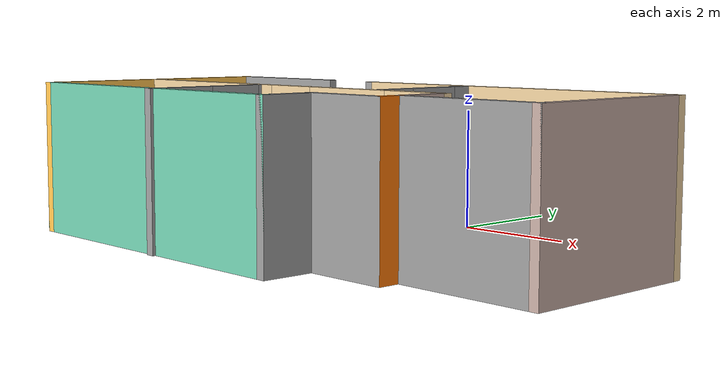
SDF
<?xml version='1.0'?>
<sdf version='1.6'>
  <model name='building2'>
    <pose frame=''>0.3 -3.445 0 0 -0 0</pose>
    <link name='Door_3'>
      <collision name='Door_3_Collision'>
        <geometry>
          <box>
            <size>0.9 0.17 2</size>
          </box>
        </geometry>
        <pose frame=''>0 0 1 0 -0 0</pose>
      </collision>
      <visual name='Door_3_Visual'>
        <pose frame=''>0 0 1 0 -0 0</pose>
        <geometry>
          <box>
            <size>0.9 0.17 2</size>
          </box>
        </geometry>
        <material>
          <script>
            <uri>file://media/materials/scripts/gazebo.material</uri>
            <name>Gazebo/Grey</name>
          </script>
        </material>
      </visual>
      <pose frame=''>-4.01 -0.065 0 0 -0 0</pose>
    </link>
    <link name='Wall_0'>
      <collision name='Wall_0_Collision'>
        <geometry>
          <box>
            <size>2.5 0.15 2.5</size>
          </box>
        </geometry>
        <pose frame=''>0 0 1.25 0 -0 0</pose>
      </collision>
      <visual name='Wall_0_Visual'>
        <pose frame=''>0 0 1.25 0 -0 0</pose>
        <geometry>
          <box>
            <size>2.5 0.15 2.5</size>
          </box>
        </geometry>
        <material>
          <script>
            <uri>file://media/materials/scripts/gazebo.material</uri>
            <name>Gazebo/Grey</name>
          </script>
          <ambient>1 1 1 1</ambient>
        </material>
        <meta>
          <layer>0</layer>
        </meta>
      </visual>
      <pose frame=''>-3.475 2.075 0 0 -0 3.14159</pose>
    </link>
    <link name='Wall_1'>
      <collision name='Wall_1_Collision'>
        <geometry>
          <box>
            <size>4.25 0.15 2.5</size>
          </box>
        </geometry>
        <pose frame=''>0 0 1.25 0 -0 0</pose>
      </collision>
      <visual name='Wall_1_Visual'>
        <pose frame=''>0 0 1.25 0 -0 0</pose>
        <geometry>
          <box>
            <size>4.25 0.15 2.5</size>
          </box>
        </geometry>
        <material>
          <script>
            <uri>file://media/materials/scripts/gazebo.material</uri>
            <name>Gazebo/Grey</name>
          </script>
          <ambient>1 0.764706 0.305882 1</ambient>
        </material>
        <meta>
          <layer>0</layer>
        </meta>
      </visual>
      <pose frame=''>-4.65 0.025 0 0 0 -1.5708</pose>
    </link>
    <link name='Wall_12'>
      <collision name='Wall_12_Collision'>
        <geometry>
          <box>
            <size>1 0.15 2.5</size>
          </box>
        </geometry>
        <pose frame=''>0 0 1.25 0 -0 0</pose>
      </collision>
      <visual name='Wall_12_Visual'>
        <pose frame=''>0 0 1.25 0 -0 0</pose>
        <geometry>
          <box>
            <size>1 0.15 2.5</size>
          </box>
        </geometry>
        <material>
          <script>
            <uri>file://media/materials/scripts/gazebo.material</uri>
            <name>Gazebo/Grey</name>
          </script>
          <ambient>0.760784 0.662745 0.627451 1</ambient>
        </material>
        <meta>
          <layer>0</layer>
        </meta>
      </visual>
      <pose frame=''>2.3 -0.4 0 0 -0 1.5708</pose>
    </link>
    <link name='Wall_13'>
      <pose frame=''>-1.125 0.025 0 0 -0 3.14159</pose>
      <visual name='Wall_13_Visual_0'>
        <pose frame=''>-3.3725 0 1.25 0 -0 0</pose>
        <geometry>
          <box>
            <size>0.255 0.15 2.5</size>
          </box>
        </geometry>
        <material>
          <script>
            <uri>file://media/materials/scripts/gazebo.material</uri>
            <name>Gazebo/Grey</name>
          </script>
          <ambient>0.921569 0.807843 0.615686 1</ambient>
        </material>
        <meta>
          <layer>0</layer>
        </meta>
      </visual>
      <collision name='Wall_13_Collision_0'>
        <geometry>
          <box>
            <size>0.255 0.15 2.5</size>
          </box>
        </geometry>
        <pose frame=''>-3.3725 0 1.25 0 -0 0</pose>
      </collision>
      <visual name='Wall_13_Visual_1'>
        <pose frame=''>-1.535 0 1.25 0 -0 0</pose>
        <geometry>
          <box>
            <size>1.62 0.15 2.5</size>
          </box>
        </geometry>
        <material>
          <script>
            <uri>file://media/materials/scripts/gazebo.material</uri>
            <name>Gazebo/Grey</name>
          </script>
          <ambient>0.921569 0.807843 0.615686 1</ambient>
        </material>
        <meta>
          <layer>0</layer>
        </meta>
      </visual>
      <collision name='Wall_13_Collision_1'>
        <geometry>
          <box>
            <size>1.62 0.15 2.5</size>
          </box>
        </geometry>
        <pose frame=''>-1.535 0 1.25 0 -0 0</pose>
      </collision>
      <visual name='Wall_13_Visual_2'>
        <pose frame=''>1.8375 0 1.25 0 -0 0</pose>
        <geometry>
          <box>
            <size>3.325 0.15 2.5</size>
          </box>
        </geometry>
        <material>
          <script>
            <uri>file://media/materials/scripts/gazebo.material</uri>
            <name>Gazebo/Grey</name>
          </script>
          <ambient>0.921569 0.807843 0.615686 1</ambient>
        </material>
        <meta>
          <layer>0</layer>
        </meta>
      </visual>
      <collision name='Wall_13_Collision_2'>
        <geometry>
          <box>
            <size>3.325 0.15 2.5</size>
          </box>
        </geometry>
        <pose frame=''>1.8375 0 1.25 0 -0 0</pose>
      </collision>
      <visual name='Wall_13_Visual_3'>
        <pose frame=''>-2.795 0 2.25 0 -0 0</pose>
        <geometry>
          <box>
            <size>0.9 0.15 0.5</size>
          </box>
        </geometry>
        <material>
          <script>
            <uri>file://media/materials/scripts/gazebo.material</uri>
            <name>Gazebo/Grey</name>
          </script>
          <ambient>0.921569 0.807843 0.615686 1</ambient>
        </material>
        <meta>
          <layer>0</layer>
        </meta>
      </visual>
      <collision name='Wall_13_Collision_3'>
        <geometry>
          <box>
            <size>0.9 0.15 0.5</size>
          </box>
        </geometry>
        <pose frame=''>-2.795 0 2.25 0 -0 0</pose>
      </collision>
      <visual name='Wall_13_Visual_4'>
        <pose frame=''>-0.275 0 2.25 0 -0 0</pose>
        <geometry>
          <box>
            <size>0.9 0.15 0.5</size>
          </box>
        </geometry>
        <material>
          <script>
            <uri>file://media/materials/scripts/gazebo.material</uri>
            <name>Gazebo/Grey</name>
          </script>
          <ambient>0.921569 0.807843 0.615686 1</ambient>
        </material>
        <meta>
          <layer>0</layer>
        </meta>
      </visual>
      <collision name='Wall_13_Collision_4'>
        <geometry>
          <box>
            <size>0.9 0.15 0.5</size>
          </box>
        </geometry>
        <pose frame=''>-0.275 0 2.25 0 -0 0</pose>
      </collision>
    </link>
    <link name='Wall_15'>
      <pose frame=''>-1.63 -1.025 0 0 0 -1.5708</pose>
      <visual name='Wall_15_Visual_0'>
        <pose frame=''>-1.0175 0 1.25 0 -0 0</pose>
        <geometry>
          <box>
            <size>0.215 0.15 2.5</size>
          </box>
        </geometry>
        <material>
          <script>
            <uri>file://media/materials/scripts/gazebo.material</uri>
            <name>Gazebo/Grey</name>
          </script>
          <ambient>1 1 1 1</ambient>
        </material>
        <meta>
          <layer>0</layer>
        </meta>
      </visual>
      <collision name='Wall_15_Collision_0'>
        <geometry>
          <box>
            <size>0.215 0.15 2.5</size>
          </box>
        </geometry>
        <pose frame=''>-1.0175 0 1.25 0 -0 0</pose>
      </collision>
      <visual name='Wall_15_Visual_1'>
        <pose frame=''>0.5575 0 1.25 0 -0 0</pose>
        <geometry>
          <box>
            <size>1.135 0.15 2.5</size>
          </box>
        </geometry>
        <material>
          <script>
            <uri>file://media/materials/scripts/gazebo.material</uri>
            <name>Gazebo/Grey</name>
          </script>
          <ambient>1 1 1 1</ambient>
        </material>
        <meta>
          <layer>0</layer>
        </meta>
      </visual>
      <collision name='Wall_15_Collision_1'>
        <geometry>
          <box>
            <size>1.135 0.15 2.5</size>
          </box>
        </geometry>
        <pose frame=''>0.5575 0 1.25 0 -0 0</pose>
      </collision>
      <visual name='Wall_15_Visual_2'>
        <pose frame=''>-0.46 0 2.25 0 -0 0</pose>
        <geometry>
          <box>
            <size>0.9 0.15 0.5</size>
          </box>
        </geometry>
        <material>
          <script>
            <uri>file://media/materials/scripts/gazebo.material</uri>
            <name>Gazebo/Grey</name>
          </script>
          <ambient>1 1 1 1</ambient>
        </material>
        <meta>
          <layer>0</layer>
        </meta>
      </visual>
      <collision name='Wall_15_Collision_2'>
        <geometry>
          <box>
            <size>0.9 0.15 0.5</size>
          </box>
        </geometry>
        <pose frame=''>-0.46 0 2.25 0 -0 0</pose>
      </collision>
    </link>
    <link name='Wall_17'>
      <pose frame=''>0.95 1.08 0 0 0 -1.5708</pose>
      <visual name='Wall_17_Visual_0'>
        <pose frame=''>-0.7775 0 1.25 0 -0 0</pose>
        <geometry>
          <box>
            <size>0.445 0.15 2.5</size>
          </box>
        </geometry>
        <material>
          <script>
            <uri>file://media/materials/scripts/gazebo.material</uri>
            <name>Gazebo/Grey</name>
          </script>
          <ambient>1 1 1 1</ambient>
        </material>
        <meta>
          <layer>0</layer>
        </meta>
      </visual>
      <collision name='Wall_17_Collision_0'>
        <geometry>
          <box>
            <size>0.445 0.15 2.5</size>
          </box>
        </geometry>
        <pose frame=''>-0.7775 0 1.25 0 -0 0</pose>
      </collision>
      <visual name='Wall_17_Visual_1'>
        <pose frame=''>0.6725 0 1.25 0 -0 0</pose>
        <geometry>
          <box>
            <size>0.655 0.15 2.5</size>
          </box>
        </geometry>
        <material>
          <script>
            <uri>file://media/materials/scripts/gazebo.material</uri>
            <name>Gazebo/Grey</name>
          </script>
          <ambient>1 1 1 1</ambient>
        </material>
        <meta>
          <layer>0</layer>
        </meta>
      </visual>
      <collision name='Wall_17_Collision_1'>
        <geometry>
          <box>
            <size>0.655 0.15 2.5</size>
          </box>
        </geometry>
        <pose frame=''>0.6725 0 1.25 0 -0 0</pose>
      </collision>
      <visual name='Wall_17_Visual_2'>
        <pose frame=''>-0.105 0 2.25 0 -0 0</pose>
        <geometry>
          <box>
            <size>0.9 0.15 0.5</size>
          </box>
        </geometry>
        <material>
          <script>
            <uri>file://media/materials/scripts/gazebo.material</uri>
            <name>Gazebo/Grey</name>
          </script>
          <ambient>1 1 1 1</ambient>
        </material>
        <meta>
          <layer>0</layer>
        </meta>
      </visual>
      <collision name='Wall_17_Collision_2'>
        <geometry>
          <box>
            <size>0.9 0.15 0.5</size>
          </box>
        </geometry>
        <pose frame=''>-0.105 0 2.25 0 -0 0</pose>
      </collision>
    </link>
    <link name='Wall_2'>
      <collision name='Wall_2_Collision'>
        <geometry>
          <box>
            <size>5.75 0.15 2.5</size>
          </box>
        </geometry>
        <pose frame=''>0 0 1.25 0 -0 0</pose>
      </collision>
      <visual name='Wall_2_Visual'>
        <pose frame=''>0 0 1.25 0 -0 0</pose>
        <geometry>
          <box>
            <size>5.75 0.15 2.5</size>
          </box>
        </geometry>
        <material>
          <script>
            <uri>file://media/materials/scripts/gazebo.material</uri>
            <name>Gazebo/Grey</name>
          </script>
          <ambient>0.435294 0.796078 0.67451 1</ambient>
        </material>
        <meta>
          <layer>0</layer>
        </meta>
      </visual>
      <pose frame=''>-1.85 -2.025 0 0 -0 0</pose>
    </link>
    <link name='Wall_3'>
      <collision name='Wall_3_Collision'>
        <geometry>
          <box>
            <size>1 0.15 2.5</size>
          </box>
        </geometry>
        <pose frame=''>0 0 1.25 0 -0 0</pose>
      </collision>
      <visual name='Wall_3_Visual'>
        <pose frame=''>0 0 1.25 0 -0 0</pose>
        <geometry>
          <box>
            <size>1 0.15 2.5</size>
          </box>
        </geometry>
        <material>
          <script>
            <uri>file://media/materials/scripts/gazebo.material</uri>
            <name>Gazebo/Grey</name>
          </script>
          <ambient>1 1 1 1</ambient>
        </material>
        <meta>
          <layer>0</layer>
        </meta>
      </visual>
      <pose frame=''>0.95 -1.6 0 0 -0 1.5708</pose>
    </link>
    <link name='Wall_4'>
      <collision name='Wall_4_Collision'>
        <geometry>
          <box>
            <size>1.5 0.15 2.5</size>
          </box>
        </geometry>
        <pose frame=''>0 0 1.25 0 -0 0</pose>
      </collision>
      <visual name='Wall_4_Visual'>
        <pose frame=''>0 0 1.25 0 -0 0</pose>
        <geometry>
          <box>
            <size>1.5 0.15 2.5</size>
          </box>
        </geometry>
        <material>
          <script>
            <uri>file://media/materials/scripts/gazebo.material</uri>
            <name>Gazebo/Grey</name>
          </script>
          <ambient>1 1 1 1</ambient>
        </material>
        <meta>
          <layer>0</layer>
        </meta>
      </visual>
      <pose frame=''>1.625 -1.175 0 0 -0 0</pose>
    </link>
    <link name='Wall_5'>
      <collision name='Wall_5_Collision'>
        <geometry>
          <box>
            <size>0.5 0.15 2.5</size>
          </box>
        </geometry>
        <pose frame=''>0 0 1.25 0 -0 0</pose>
      </collision>
      <visual name='Wall_5_Visual'>
        <pose frame=''>0 0 1.25 0 -0 0</pose>
        <geometry>
          <box>
            <size>0.5 0.15 2.5</size>
          </box>
        </geometry>
        <material>
          <script>
            <uri>file://media/materials/scripts/gazebo.material</uri>
            <name>Gazebo/Grey</name>
          </script>
          <ambient>0.996078 0.47451 0.0196078 1</ambient>
        </material>
        <meta>
          <layer>0</layer>
        </meta>
      </visual>
      <pose frame=''>2.3 -1 0 0 -0 1.5708</pose>
    </link>
    <link name='Wall_6'>
      <collision name='Wall_6_Collision'>
        <geometry>
          <box>
            <size>2.5 0.15 2.5</size>
          </box>
        </geometry>
        <pose frame=''>0 0 1.25 0 -0 0</pose>
      </collision>
      <visual name='Wall_6_Visual'>
        <pose frame=''>0 0 1.25 0 -0 0</pose>
        <geometry>
          <box>
            <size>2.5 0.15 2.5</size>
          </box>
        </geometry>
        <material>
          <script>
            <uri>file://media/materials/scripts/gazebo.material</uri>
            <name>Gazebo/Grey</name>
          </script>
          <ambient>1 1 1 1</ambient>
        </material>
        <meta>
          <layer>0</layer>
        </meta>
      </visual>
      <pose frame=''>3.475 -0.825 0 0 -0 0</pose>
    </link>
    <link name='Wall_7'>
      <collision name='Wall_7_Collision'>
        <geometry>
          <box>
            <size>3 0.15 2.5</size>
          </box>
        </geometry>
        <pose frame=''>0 0 1.25 0 -0 0</pose>
      </collision>
      <visual name='Wall_7_Visual'>
        <pose frame=''>0 0 1.25 0 -0 0</pose>
        <geometry>
          <box>
            <size>3 0.15 2.5</size>
          </box>
        </geometry>
        <material>
          <script>
            <uri>file://media/materials/scripts/gazebo.material</uri>
            <name>Gazebo/Grey</name>
          </script>
          <ambient>0.760784 0.662745 0.627451 1</ambient>
        </material>
        <meta>
          <layer>0</layer>
        </meta>
      </visual>
      <pose frame=''>4.65 0.6 0 0 -0 1.5708</pose>
    </link>
    <link name='Wall_8'>
      <collision name='Wall_8_Collision'>
        <geometry>
          <box>
            <size>6 0.15 2.5</size>
          </box>
        </geometry>
        <pose frame=''>0 0 1.25 0 -0 0</pose>
      </collision>
      <visual name='Wall_8_Visual'>
        <pose frame=''>0 0 1.25 0 -0 0</pose>
        <geometry>
          <box>
            <size>6 0.15 2.5</size>
          </box>
        </geometry>
        <material>
          <script>
            <uri>file://media/materials/scripts/gazebo.material</uri>
            <name>Gazebo/Grey</name>
          </script>
          <ambient>0.921569 0.807843 0.615686 1</ambient>
        </material>
        <meta>
          <layer>0</layer>
        </meta>
      </visual>
      <pose frame=''>1.725 2.025 0 0 -0 3.14159</pose>
    </link>
    <link name='Wall_9'>
      <collision name='Wall_9_Collision'>
        <geometry>
          <box>
            <size>0.15 0.15 2.5</size>
          </box>
        </geometry>
        <pose frame=''>0 0 1.25 0 -0 0</pose>
      </collision>
      <visual name='Wall_9_Visual'>
        <pose frame=''>0 0 1.25 0 -0 0</pose>
        <geometry>
          <box>
            <size>0.15 0.15 2.5</size>
          </box>
        </geometry>
        <material>
          <script>
            <uri>file://media/materials/scripts/gazebo.material</uri>
            <name>Gazebo/Grey</name>
          </script>
          <ambient>1 1 1 1</ambient>
        </material>
        <meta>
          <layer>0</layer>
        </meta>
      </visual>
      <pose frame=''>-1.2 2.025 0 0 -0 0</pose>
    </link>
    <static>1</static>
  </model>
</sdf>
